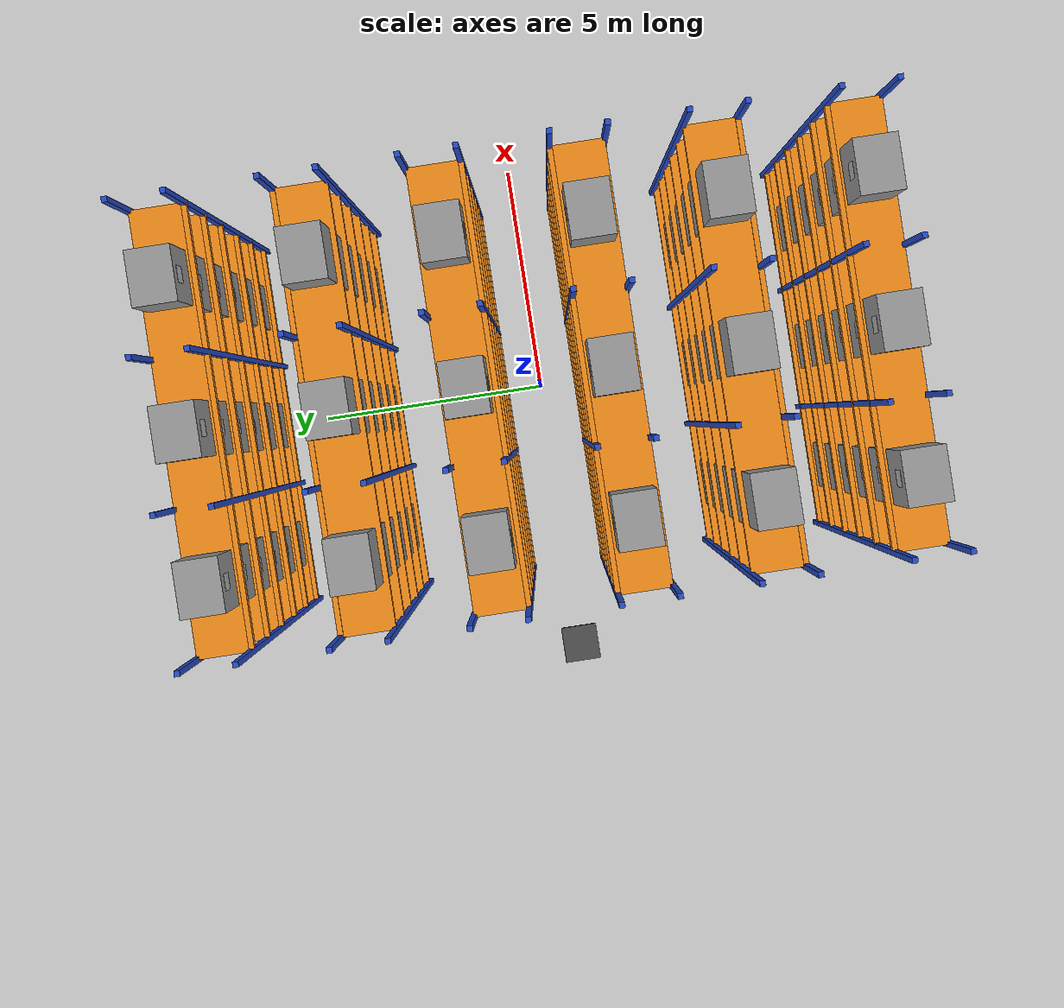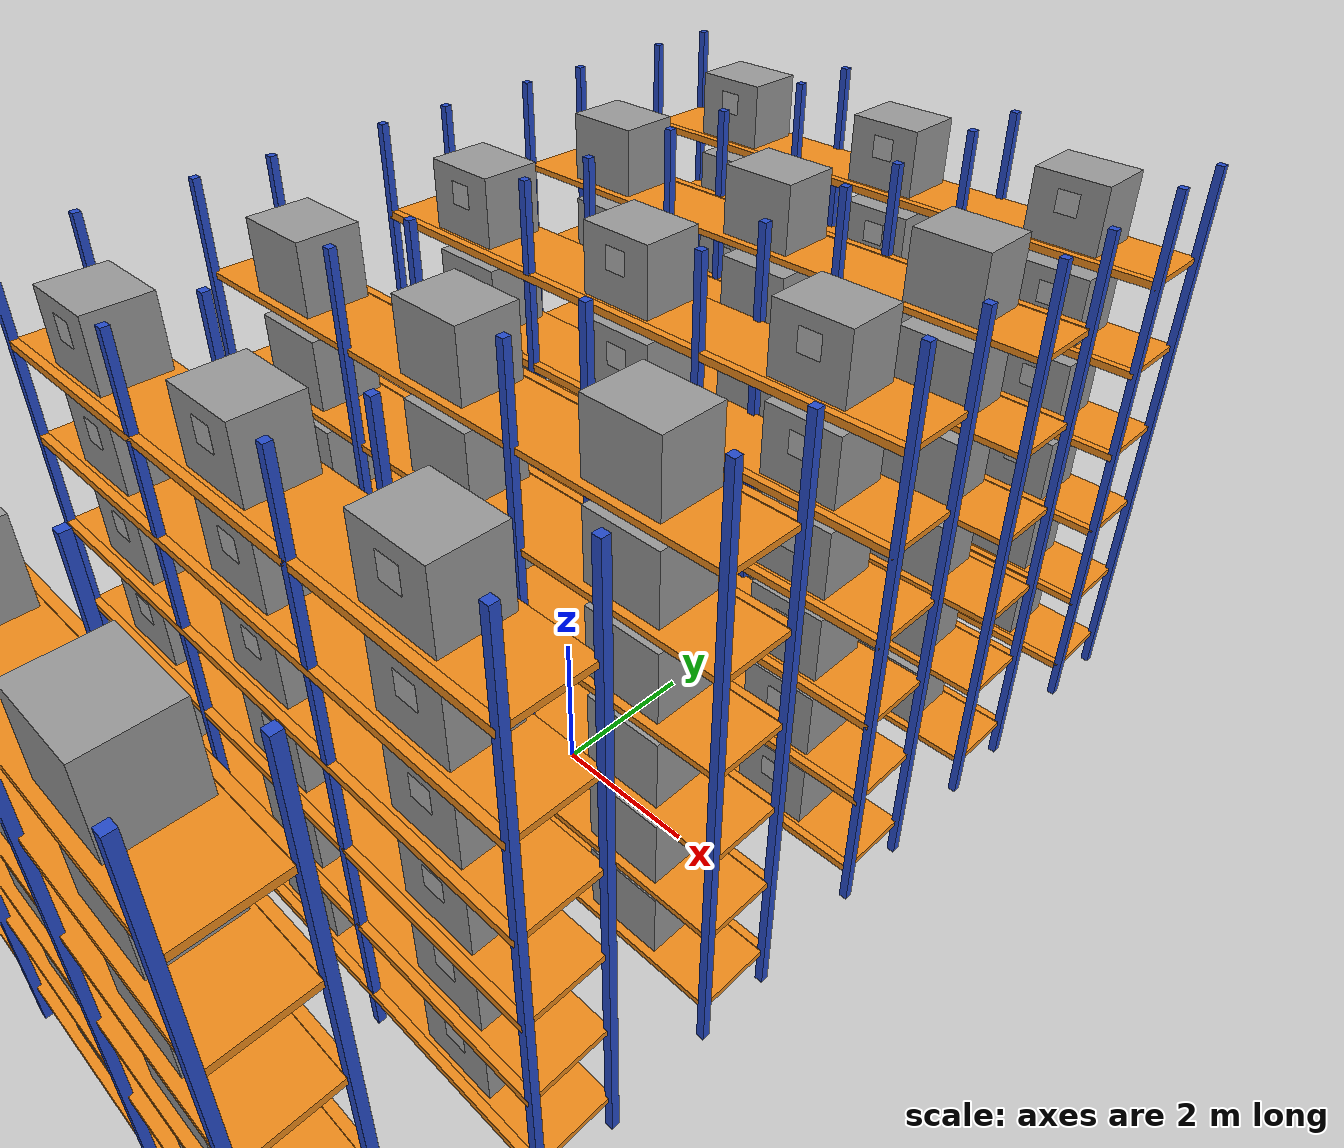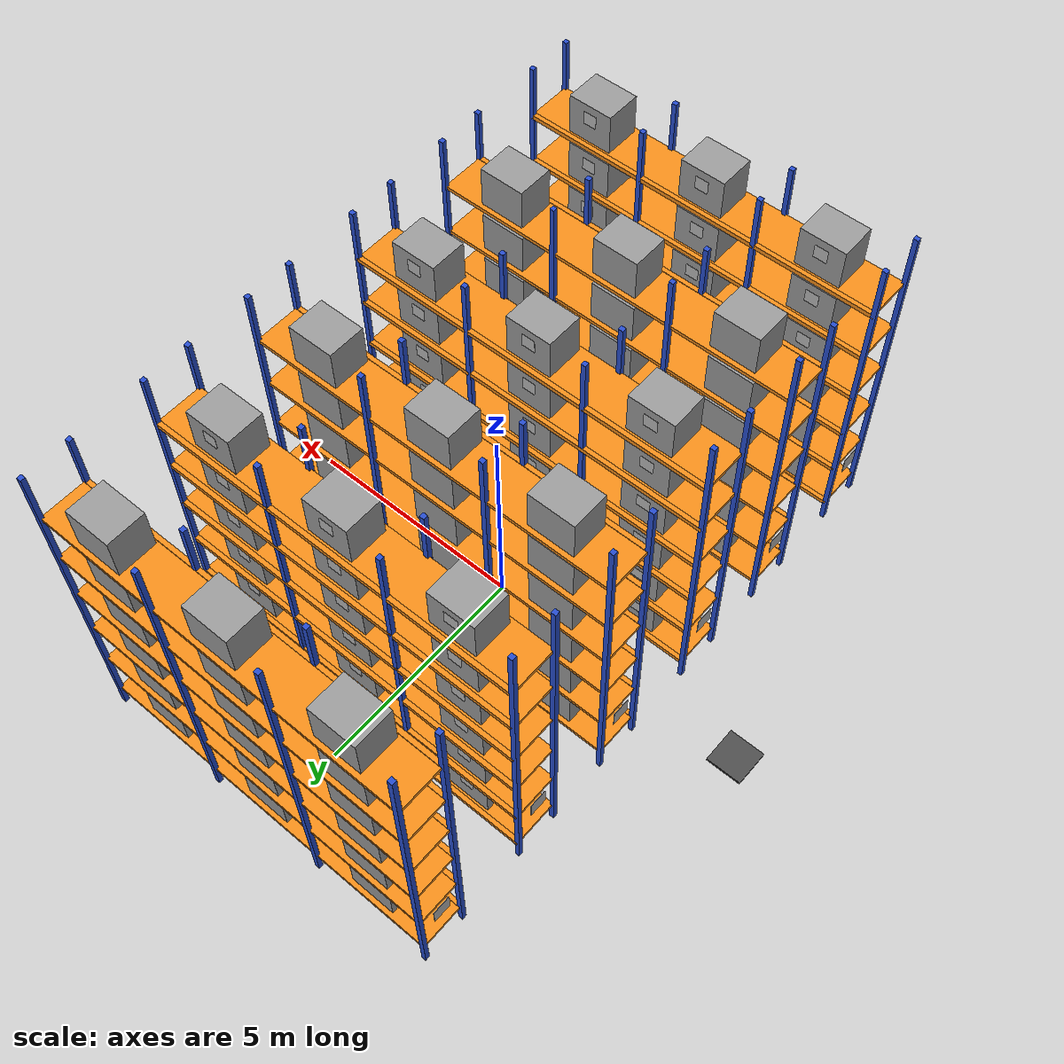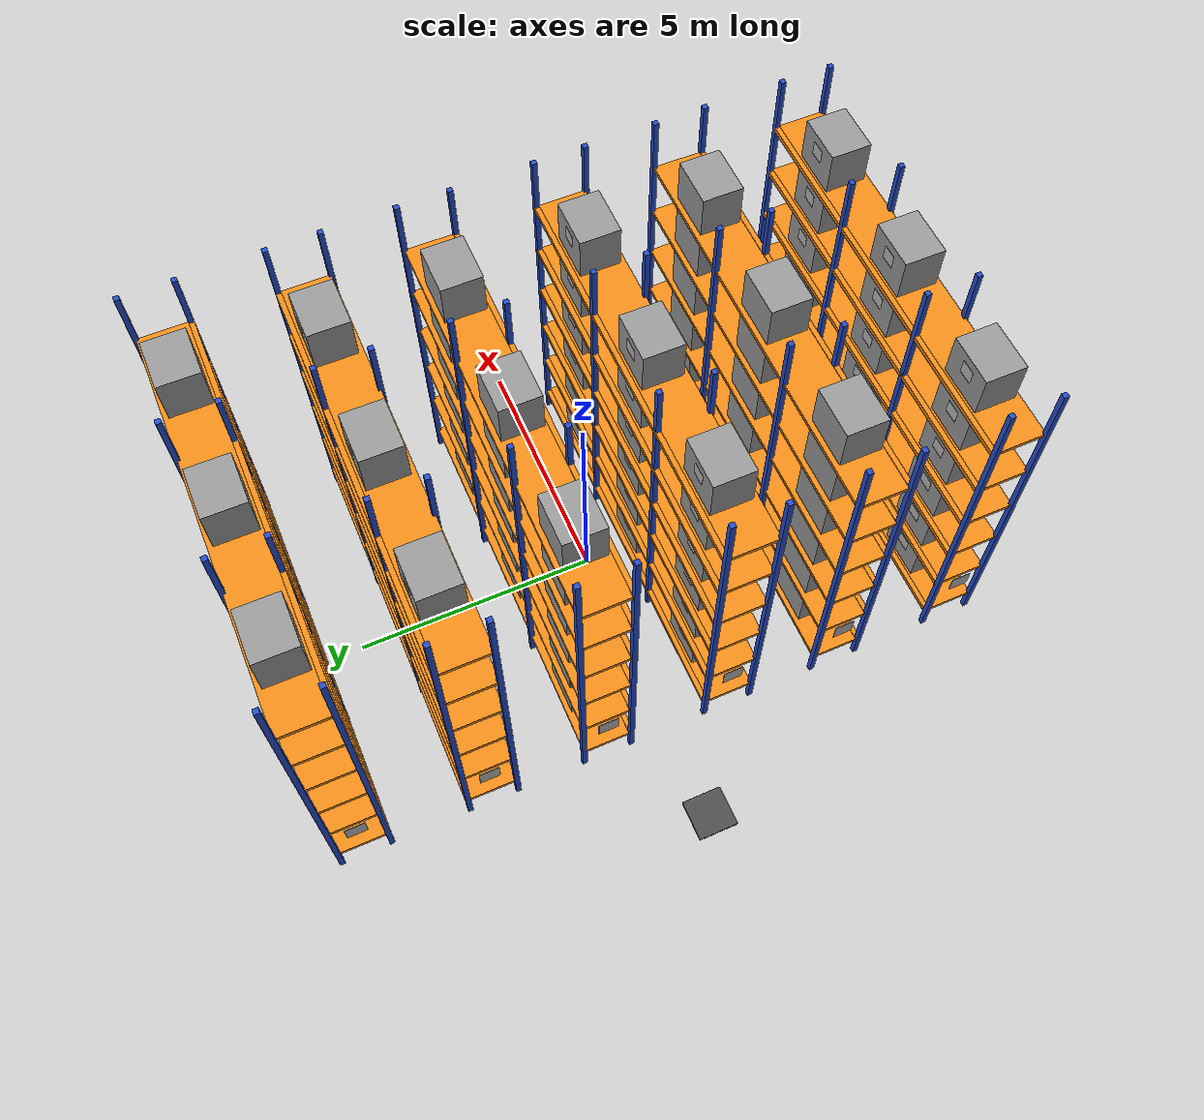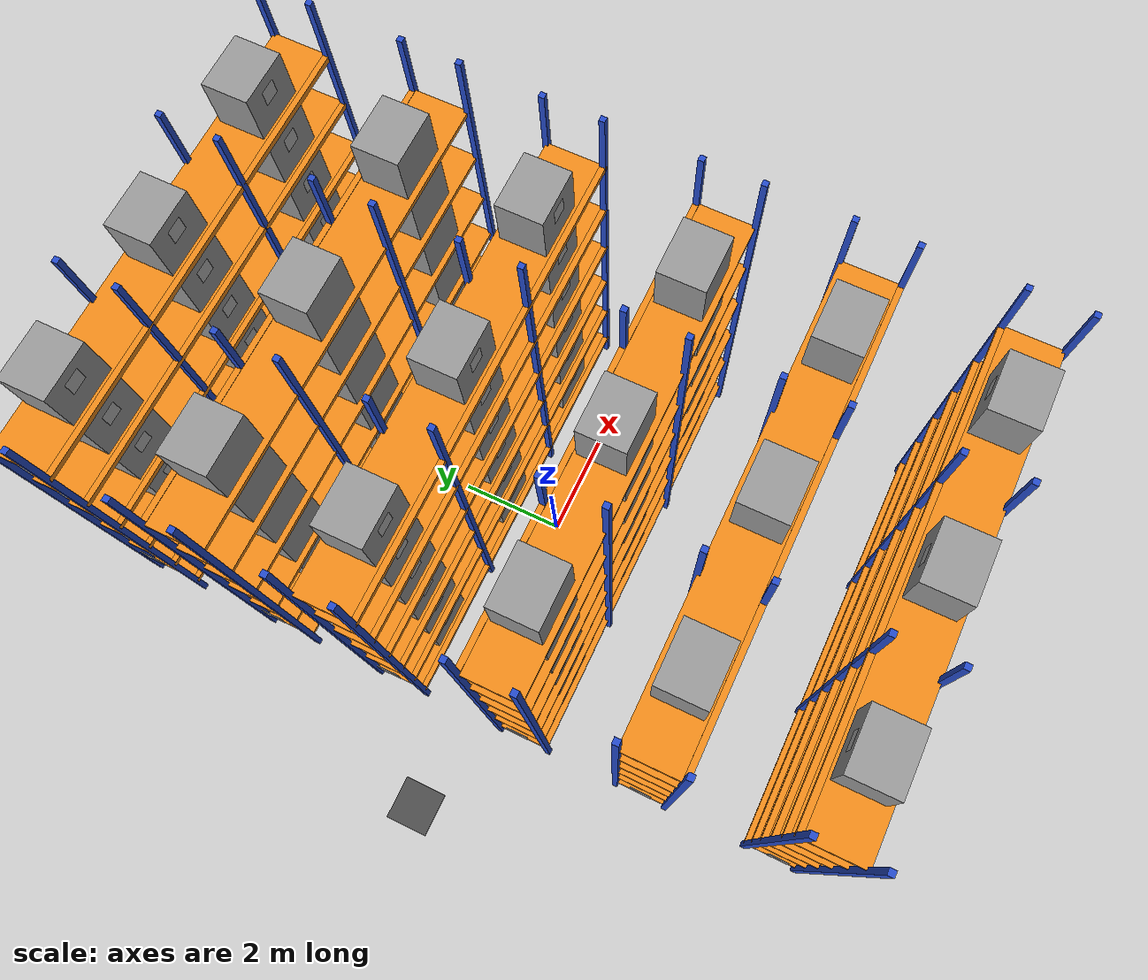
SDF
<sdf version="1.6">
 <world name="default">
  <plugin name="pairs_gazebo_static_transform_republisher_plugin" filename="libPairsGazeboCommonResources_StaticTransformRepublisher.so"/>
  <spherical_coordinates>
   <surface_model>EARTH_WGS84</surface_model>
   <latitude_deg>47.397743</latitude_deg>
   <longitude_deg>8.545594</longitude_deg>
   <elevation>0.0</elevation>
   <heading_deg>0</heading_deg>
  </spherical_coordinates>
  <physics name="default_physics" default="0" type="ode">
   <gravity>0 0 -9.8066</gravity>
   <ode>
    <solver>
     <type>quick</type>
     <iters>10</iters>
     <sor>1.3</sor>
     <use_dynamic_moi_rescaling>0</use_dynamic_moi_rescaling>
    </solver>
    <constraints>
     <cfm>0</cfm>
     <erp>0.2</erp>
     <contact_max_correcting_vel>1000</contact_max_correcting_vel>
     <contact_surface_layer>0.001</contact_surface_layer>
    </constraints>
   </ode>
   <max_step_size>0.004</max_step_size>
   <real_time_factor>1</real_time_factor>
   <real_time_update_rate>250</real_time_update_rate>
   <magnetic_field>6.0e-06 2.3e-05 -4.2e-05</magnetic_field>
  </physics>
  <scene><shadows>false</shadows><ambient>0.5 0.5 0.5 1</ambient><background>0.4 0.4 0.4 1</background></scene>
  <light name="sun" type="directional">
   <pose>0 0 1000 0.4 0.2 0</pose>
   <diffuse>0.9 0.9 0.9 1</diffuse>
   <specular>0.4 0.4 0.4 1</specular>
   <direction>0.1 0.1 -0.9</direction>
   <attenuation>
    <range>1000</range>
    <constant>0.9</constant>
    <linear>0.01</linear>
    <quadratic>0.001</quadratic>
   </attenuation>
   <cast_shadows>0</cast_shadows>
  </light>
  <model name="ground_plane">
   <static>true</static>
   <link name="link">
    <collision name="collision">
     <geometry><plane><normal>0 0 1</normal><size>250 250</size></plane></geometry>
     <surface><contact><ode><min_depth>0.01</min_depth><max_vel>0.0</max_vel></ode></contact></surface>
    </collision>
    <visual name="floor">
     <cast_shadows>false</cast_shadows>
     <geometry><plane><normal>0 0 1</normal><size>250 250</size></plane></geometry>
     <material>
      <script><uri>file://media/materials/scripts/gazebo.material</uri><name>Gazebo/Grey</name></script>
     </material>
    </visual>
   </link>
  </model>
  <include><name>rack_1_left</name><uri>model://warehouse_rack</uri><pose>0 6.3 0 0 0 0</pose></include>
  <include><name>rack_2_right</name><uri>model://warehouse_rack</uri><pose>0 3.7 0 0 0 3.14159</pose></include>
  <include><name>rack_3_left</name><uri>model://warehouse_rack</uri><pose>0 1.3 0 0 0 0</pose></include>
  <include><name>rack_4_right</name><uri>model://warehouse_rack</uri><pose>0 -1.3 0 0 0 3.14159</pose></include>
  <include><name>rack_5_left</name><uri>model://warehouse_rack</uri><pose>0 -3.7 0 0 0 0</pose></include>
  <include><name>rack_6_right</name><uri>model://warehouse_rack</uri><pose>0 -6.3 0 0 0 3.14159</pose></include>
  <model name="charging_dock">
   <static>1</static>
   <pose>-6 0 0 0 0 0</pose>
   <link name="pad">
    <collision name="pad_col">
     <pose>0 0 0.025 0 0 0</pose>
     <geometry><box><size>0.8 0.8 0.05</size></box></geometry>
    </collision>
    <visual name="pad_vis">
     <pose>0 0 0.025 0 0 0</pose>
     <geometry><box><size>0.8 0.8 0.05</size></box></geometry>
     <material>
      <script><uri>file://media/materials/scripts/gazebo.material</uri><name>Gazebo/DarkGrey</name></script>
     </material>
    </visual>
   </link>
  </model>
  <model name="the_void">
   <static>1</static>
   <link name="link">
    <pose>0 0 0.1 0 -0 0</pose>
    <visual name="the_void">
     <pose>0 0 2 0 -0 0</pose>
     <geometry><sphere><radius>0.25</radius></sphere></geometry>
     <material>
      <script><uri>file://media/materials/scripts/Gazebo.material</uri><name>Gazebo/Black</name></script>
     </material>
    </visual>
   </link>
   <pose>-1000 -1000 0 0 0 0</pose>
  </model>
  <plugin name="pairs_gazebo_rviz_cam_synchronizer" filename="libPairsGazeboCommonResources_RvizCameraSynchronizer.so">
   <target_frame_id>gazebo_user_camera</target_frame_id>
   <world_origin_frame_id>uav1/gps_origin</world_origin_frame_id>
   <frame_to_follow>uav1</frame_to_follow>
  </plugin>
  <model name="anchor_tag_101">
   <static>1</static>
   <pose>-4.1 6.3 1.5 0 0 3.14159</pose>
   <link name="link">
    <visual name="visual">
     <geometry><box><size>0.01 0.4 0.4</size></box></geometry>
     <material>
      <script>
       <uri>model://apriltag_marker/materials/scripts</uri>
       <uri>model://apriltag_marker/materials/textures</uri>
       <name>Apriltag_101</name>
      </script>
     </material>
    </visual>
   </link>
  </model>
  <model name="anchor_tag_102">
   <static>1</static>
   <pose>-4.1 3.7 1.5 0 0 3.14159</pose>
   <link name="link">
    <visual name="visual">
     <geometry><box><size>0.01 0.4 0.4</size></box></geometry>
     <material>
      <script>
       <uri>model://apriltag_marker/materials/scripts</uri>
       <uri>model://apriltag_marker/materials/textures</uri>
       <name>Apriltag_102</name>
      </script>
     </material>
    </visual>
   </link>
  </model>
  <model name="anchor_tag_103">
   <static>1</static>
   <pose>-4.1 1.3 1.5 0 0 3.14159</pose>
   <link name="link">
    <visual name="visual">
     <geometry><box><size>0.01 0.4 0.4</size></box></geometry>
     <material>
      <script>
       <uri>model://apriltag_marker/materials/scripts</uri>
       <uri>model://apriltag_marker/materials/textures</uri>
       <name>Apriltag_103</name>
      </script>
     </material>
    </visual>
   </link>
  </model>
  <model name="anchor_tag_104">
   <static>1</static>
   <pose>-4.1 -1.3 1.5 0 0 3.14159</pose>
   <link name="link">
    <visual name="visual">
     <geometry><box><size>0.01 0.4 0.4</size></box></geometry>
     <material>
      <script>
       <uri>model://apriltag_marker/materials/scripts</uri>
       <uri>model://apriltag_marker/materials/textures</uri>
       <name>Apriltag_104</name>
      </script>
     </material>
    </visual>
   </link>
  </model>
  <model name="anchor_tag_105">
   <static>1</static>
   <pose>-4.1 -3.7 1.5 0 0 3.14159</pose>
   <link name="link">
    <visual name="visual">
     <geometry><box><size>0.01 0.4 0.4</size></box></geometry>
     <material>
      <script>
       <uri>model://apriltag_marker/materials/scripts</uri>
       <uri>model://apriltag_marker/materials/textures</uri>
       <name>Apriltag_105</name>
      </script>
     </material>
    </visual>
   </link>
  </model>
  <model name="anchor_tag_106">
   <static>1</static>
   <pose>-4.1 -6.3 1.5 0 0 3.14159</pose>
   <link name="link">
    <visual name="visual">
     <geometry><box><size>0.01 0.4 0.4</size></box></geometry>
     <material>
      <script>
       <uri>model://apriltag_marker/materials/scripts</uri>
       <uri>model://apriltag_marker/materials/textures</uri>
       <name>Apriltag_106</name>
      </script>
     </material>
    </visual>
   </link>
  </model>
 </world>
</sdf>

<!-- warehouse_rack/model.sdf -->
<sdf version='1.6'>
  <model name='warehouse_rack'>
    <static>1</static>
    <link name='upright_0_f'>
      <pose>-4.0500 -0.5000 3.8500 0 0 0</pose>
      <collision name='upright_0_f_col'>
        <geometry><box><size>0.1000 0.1000 7.7000</size></box></geometry>
      </collision>
      <visual name='upright_0_f_vis'>
        <geometry><box><size>0.1000 0.1000 7.7000</size></box></geometry>
        <material><script>
          <uri>file://media/materials/scripts/gazebo.material</uri>
          <name>Gazebo/Blue</name>
        </script></material>
      </visual>
    </link>
    <link name='upright_0_b'>
      <pose>-4.0500 0.5000 3.8500 0 0 0</pose>
      <collision name='upright_0_b_col'>
        <geometry><box><size>0.1000 0.1000 7.7000</size></box></geometry>
      </collision>
      <visual name='upright_0_b_vis'>
        <geometry><box><size>0.1000 0.1000 7.7000</size></box></geometry>
        <material><script>
          <uri>file://media/materials/scripts/gazebo.material</uri>
          <name>Gazebo/Blue</name>
        </script></material>
      </visual>
    </link>
    <link name='upright_1_f'>
      <pose>-1.3500 -0.5000 3.8500 0 0 0</pose>
      <collision name='upright_1_f_col'>
        <geometry><box><size>0.1000 0.1000 7.7000</size></box></geometry>
      </collision>
      <visual name='upright_1_f_vis'>
        <geometry><box><size>0.1000 0.1000 7.7000</size></box></geometry>
        <material><script>
          <uri>file://media/materials/scripts/gazebo.material</uri>
          <name>Gazebo/Blue</name>
        </script></material>
      </visual>
    </link>
    <link name='upright_1_b'>
      <pose>-1.3500 0.5000 3.8500 0 0 0</pose>
      <collision name='upright_1_b_col'>
        <geometry><box><size>0.1000 0.1000 7.7000</size></box></geometry>
      </collision>
      <visual name='upright_1_b_vis'>
        <geometry><box><size>0.1000 0.1000 7.7000</size></box></geometry>
        <material><script>
          <uri>file://media/materials/scripts/gazebo.material</uri>
          <name>Gazebo/Blue</name>
        </script></material>
      </visual>
    </link>
    <link name='upright_2_f'>
      <pose>1.3500 -0.5000 3.8500 0 0 0</pose>
      <collision name='upright_2_f_col'>
        <geometry><box><size>0.1000 0.1000 7.7000</size></box></geometry>
      </collision>
      <visual name='upright_2_f_vis'>
        <geometry><box><size>0.1000 0.1000 7.7000</size></box></geometry>
        <material><script>
          <uri>file://media/materials/scripts/gazebo.material</uri>
          <name>Gazebo/Blue</name>
        </script></material>
      </visual>
    </link>
    <link name='upright_2_b'>
      <pose>1.3500 0.5000 3.8500 0 0 0</pose>
      <collision name='upright_2_b_col'>
        <geometry><box><size>0.1000 0.1000 7.7000</size></box></geometry>
      </collision>
      <visual name='upright_2_b_vis'>
        <geometry><box><size>0.1000 0.1000 7.7000</size></box></geometry>
        <material><script>
          <uri>file://media/materials/scripts/gazebo.material</uri>
          <name>Gazebo/Blue</name>
        </script></material>
      </visual>
    </link>
    <link name='upright_3_f'>
      <pose>4.0500 -0.5000 3.8500 0 0 0</pose>
      <collision name='upright_3_f_col'>
        <geometry><box><size>0.1000 0.1000 7.7000</size></box></geometry>
      </collision>
      <visual name='upright_3_f_vis'>
        <geometry><box><size>0.1000 0.1000 7.7000</size></box></geometry>
        <material><script>
          <uri>file://media/materials/scripts/gazebo.material</uri>
          <name>Gazebo/Blue</name>
        </script></material>
      </visual>
    </link>
    <link name='upright_3_b'>
      <pose>4.0500 0.5000 3.8500 0 0 0</pose>
      <collision name='upright_3_b_col'>
        <geometry><box><size>0.1000 0.1000 7.7000</size></box></geometry>
      </collision>
      <visual name='upright_3_b_vis'>
        <geometry><box><size>0.1000 0.1000 7.7000</size></box></geometry>
        <material><script>
          <uri>file://media/materials/scripts/gazebo.material</uri>
          <name>Gazebo/Blue</name>
        </script></material>
      </visual>
    </link>
    <link name='deck_0'>
      <pose>0.0000 0.0000 0.5000 0 0 0</pose>
      <collision name='deck_0_col'>
        <geometry><box><size>8.1000 1.0000 0.0800</size></box></geometry>
      </collision>
      <visual name='deck_0_vis'>
        <geometry><box><size>8.1000 1.0000 0.0800</size></box></geometry>
        <material><script>
          <uri>file://media/materials/scripts/gazebo.material</uri>
          <name>Gazebo/Orange</name>
        </script></material>
      </visual>
    </link>
    <link name='frontbeam_0'>
      <pose>0.0000 -0.5000 0.5000 0 0 0</pose>
      <collision name='frontbeam_0_col'>
        <geometry><box><size>8.1000 0.1000 0.1000</size></box></geometry>
      </collision>
      <visual name='frontbeam_0_vis'>
        <geometry><box><size>8.1000 0.1000 0.1000</size></box></geometry>
        <material><script>
          <uri>file://media/materials/scripts/gazebo.material</uri>
          <name>Gazebo/Orange</name>
        </script></material>
      </visual>
    </link>
    <link name='tag_beam_level_0_bay_0'>
      <pose>-2.7000 -0.4010 1.1000 0 0 0</pose>
      <visual name='tag_beam_level_0_bay_0_vis'>
        <geometry><box><size>0.30 0.001 0.30</size></box></geometry>
        <material>
          <script>
            <uri>model://apriltag_marker/materials/scripts</uri>
            <uri>model://apriltag_marker/materials/textures</uri>
            <name>Apriltag_marker</name>
          </script>
        </material>
      </visual>
    </link>
    <link name='tag_beam_level_0_bay_1'>
      <pose>0.0000 -0.4010 1.1000 0 0 0</pose>
      <visual name='tag_beam_level_0_bay_1_vis'>
        <geometry><box><size>0.30 0.001 0.30</size></box></geometry>
        <material>
          <script>
            <uri>model://apriltag_marker/materials/scripts</uri>
            <uri>model://apriltag_marker/materials/textures</uri>
            <name>Apriltag_marker</name>
          </script>
        </material>
      </visual>
    </link>
    <link name='tag_beam_level_0_bay_2'>
      <pose>2.7000 -0.4010 1.1000 0 0 0</pose>
      <visual name='tag_beam_level_0_bay_2_vis'>
        <geometry><box><size>0.30 0.001 0.30</size></box></geometry>
        <material>
          <script>
            <uri>model://apriltag_marker/materials/scripts</uri>
            <uri>model://apriltag_marker/materials/textures</uri>
            <name>Apriltag_marker</name>
          </script>
        </material>
      </visual>
    </link>
    <link name='deck_1'>
      <pose>0.0000 0.0000 1.7000 0 0 0</pose>
      <collision name='deck_1_col'>
        <geometry><box><size>8.1000 1.0000 0.0800</size></box></geometry>
      </collision>
      <visual name='deck_1_vis'>
        <geometry><box><size>8.1000 1.0000 0.0800</size></box></geometry>
        <material><script>
          <uri>file://media/materials/scripts/gazebo.material</uri>
          <name>Gazebo/Orange</name>
        </script></material>
      </visual>
    </link>
    <link name='frontbeam_1'>
      <pose>0.0000 -0.5000 1.7000 0 0 0</pose>
      <collision name='frontbeam_1_col'>
        <geometry><box><size>8.1000 0.1000 0.1000</size></box></geometry>
      </collision>
      <visual name='frontbeam_1_vis'>
        <geometry><box><size>8.1000 0.1000 0.1000</size></box></geometry>
        <material><script>
          <uri>file://media/materials/scripts/gazebo.material</uri>
          <name>Gazebo/Orange</name>
        </script></material>
      </visual>
    </link>
    <link name='tag_beam_level_1_bay_0'>
      <pose>-2.7000 -0.4010 2.3000 0 0 0</pose>
      <visual name='tag_beam_level_1_bay_0_vis'>
        <geometry><box><size>0.30 0.001 0.30</size></box></geometry>
        <material>
          <script>
            <uri>model://apriltag_marker/materials/scripts</uri>
            <uri>model://apriltag_marker/materials/textures</uri>
            <name>Apriltag_marker</name>
          </script>
        </material>
      </visual>
    </link>
    <link name='tag_beam_level_1_bay_1'>
      <pose>0.0000 -0.4010 2.3000 0 0 0</pose>
      <visual name='tag_beam_level_1_bay_1_vis'>
        <geometry><box><size>0.30 0.001 0.30</size></box></geometry>
        <material>
          <script>
            <uri>model://apriltag_marker/materials/scripts</uri>
            <uri>model://apriltag_marker/materials/textures</uri>
            <name>Apriltag_marker</name>
          </script>
        </material>
      </visual>
    </link>
    <link name='tag_beam_level_1_bay_2'>
      <pose>2.7000 -0.4010 2.3000 0 0 0</pose>
      <visual name='tag_beam_level_1_bay_2_vis'>
        <geometry><box><size>0.30 0.001 0.30</size></box></geometry>
        <material>
          <script>
            <uri>model://apriltag_marker/materials/scripts</uri>
            <uri>model://apriltag_marker/materials/textures</uri>
            <name>Apriltag_marker</name>
          </script>
        </material>
      </visual>
    </link>
    <link name='deck_2'>
      <pose>0.0000 0.0000 2.9000 0 0 0</pose>
      <collision name='deck_2_col'>
        <geometry><box><size>8.1000 1.0000 0.0800</size></box></geometry>
      </collision>
      <visual name='deck_2_vis'>
        <geometry><box><size>8.1000 1.0000 0.0800</size></box></geometry>
        <material><script>
          <uri>file://media/materials/scripts/gazebo.material</uri>
          <name>Gazebo/Orange</name>
        </script></material>
      </visual>
    </link>
    <link name='frontbeam_2'>
      <pose>0.0000 -0.5000 2.9000 0 0 0</pose>
      <collision name='frontbeam_2_col'>
        <geometry><box><size>8.1000 0.1000 0.1000</size></box></geometry>
      </collision>
      <visual name='frontbeam_2_vis'>
        <geometry><box><size>8.1000 0.1000 0.1000</size></box></geometry>
        <material><script>
          <uri>file://media/materials/scripts/gazebo.material</uri>
          <name>Gazebo/Orange</name>
        </script></material>
      </visual>
    </link>
    <link name='tag_beam_level_2_bay_0'>
      <pose>-2.7000 -0.4010 3.5000 0 0 0</pose>
      <visual name='tag_beam_level_2_bay_0_vis'>
        <geometry><box><size>0.30 0.001 0.30</size></box></geometry>
        <material>
          <script>
            <uri>model://apriltag_marker/materials/scripts</uri>
            <uri>model://apriltag_marker/materials/textures</uri>
            <name>Apriltag_marker</name>
          </script>
        </material>
      </visual>
    </link>
    <link name='tag_beam_level_2_bay_1'>
      <pose>0.0000 -0.4010 3.5000 0 0 0</pose>
      <visual name='tag_beam_level_2_bay_1_vis'>
        <geometry><box><size>0.30 0.001 0.30</size></box></geometry>
        <material>
          <script>
            <uri>model://apriltag_marker/materials/scripts</uri>
            <uri>model://apriltag_marker/materials/textures</uri>
            <name>Apriltag_marker</name>
          </script>
        </material>
      </visual>
    </link>
    <link name='tag_beam_level_2_bay_2'>
      <pose>2.7000 -0.4010 3.5000 0 0 0</pose>
      <visual name='tag_beam_level_2_bay_2_vis'>
        <geometry><box><size>0.30 0.001 0.30</size></box></geometry>
        <material>
          <script>
            <uri>model://apriltag_marker/materials/scripts</uri>
            <uri>model://apriltag_marker/materials/textures</uri>
            <name>Apriltag_marker</name>
          </script>
        </material>
      </visual>
    </link>
    <link name='deck_3'>
      <pose>0.0000 0.0000 4.1000 0 0 0</pose>
      <collision name='deck_3_col'>
        <geometry><box><size>8.1000 1.0000 0.0800</size></box></geometry>
      </collision>
      <visual name='deck_3_vis'>
        <geometry><box><size>8.1000 1.0000 0.0800</size></box></geometry>
        <material><script>
          <uri>file://media/materials/scripts/gazebo.material</uri>
          <name>Gazebo/Orange</name>
        </script></material>
      </visual>
    </link>
    <link name='frontbeam_3'>
      <pose>0.0000 -0.5000 4.1000 0 0 0</pose>
      <collision name='frontbeam_3_col'>
        <geometry><box><size>8.1000 0.1000 0.1000</size></box></geometry>
      </collision>
      <visual name='frontbeam_3_vis'>
        <geometry><box><size>8.1000 0.1000 0.1000</size></box></geometry>
        <material><script>
          <uri>file://media/materials/scripts/gazebo.material</uri>
          <name>Gazebo/Orange</name>
        </script></material>
      </visual>
    </link>
    <link name='tag_beam_level_3_bay_0'>
      <pose>-2.7000 -0.4010 4.7000 0 0 0</pose>
      <visual name='tag_beam_level_3_bay_0_vis'>
        <geometry><box><size>0.30 0.001 0.30</size></box></geometry>
        <material>
          <script>
            <uri>model://apriltag_marker/materials/scripts</uri>
            <uri>model://apriltag_marker/materials/textures</uri>
            <name>Apriltag_marker</name>
          </script>
        </material>
      </visual>
    </link>
    <link name='tag_beam_level_3_bay_1'>
      <pose>0.0000 -0.4010 4.7000 0 0 0</pose>
      <visual name='tag_beam_level_3_bay_1_vis'>
        <geometry><box><size>0.30 0.001 0.30</size></box></geometry>
        <material>
          <script>
            <uri>model://apriltag_marker/materials/scripts</uri>
            <uri>model://apriltag_marker/materials/textures</uri>
            <name>Apriltag_marker</name>
          </script>
        </material>
      </visual>
    </link>
    <link name='tag_beam_level_3_bay_2'>
      <pose>2.7000 -0.4010 4.7000 0 0 0</pose>
      <visual name='tag_beam_level_3_bay_2_vis'>
        <geometry><box><size>0.30 0.001 0.30</size></box></geometry>
        <material>
          <script>
            <uri>model://apriltag_marker/materials/scripts</uri>
            <uri>model://apriltag_marker/materials/textures</uri>
            <name>Apriltag_marker</name>
          </script>
        </material>
      </visual>
    </link>
    <link name='deck_4'>
      <pose>0.0000 0.0000 5.3000 0 0 0</pose>
      <collision name='deck_4_col'>
        <geometry><box><size>8.1000 1.0000 0.0800</size></box></geometry>
      </collision>
      <visual name='deck_4_vis'>
        <geometry><box><size>8.1000 1.0000 0.0800</size></box></geometry>
        <material><script>
          <uri>file://media/materials/scripts/gazebo.material</uri>
          <name>Gazebo/Orange</name>
        </script></material>
      </visual>
    </link>
    <link name='frontbeam_4'>
      <pose>0.0000 -0.5000 5.3000 0 0 0</pose>
      <collision name='frontbeam_4_col'>
        <geometry><box><size>8.1000 0.1000 0.1000</size></box></geometry>
      </collision>
      <visual name='frontbeam_4_vis'>
        <geometry><box><size>8.1000 0.1000 0.1000</size></box></geometry>
        <material><script>
          <uri>file://media/materials/scripts/gazebo.material</uri>
          <name>Gazebo/Orange</name>
        </script></material>
      </visual>
    </link>
    <link name='tag_beam_level_4_bay_0'>
      <pose>-2.7000 -0.4010 5.9000 0 0 0</pose>
      <visual name='tag_beam_level_4_bay_0_vis'>
        <geometry><box><size>0.30 0.001 0.30</size></box></geometry>
        <material>
          <script>
            <uri>model://apriltag_marker/materials/scripts</uri>
            <uri>model://apriltag_marker/materials/textures</uri>
            <name>Apriltag_marker</name>
          </script>
        </material>
      </visual>
    </link>
    <link name='tag_beam_level_4_bay_1'>
      <pose>0.0000 -0.4010 5.9000 0 0 0</pose>
      <visual name='tag_beam_level_4_bay_1_vis'>
        <geometry><box><size>0.30 0.001 0.30</size></box></geometry>
        <material>
          <script>
            <uri>model://apriltag_marker/materials/scripts</uri>
            <uri>model://apriltag_marker/materials/textures</uri>
            <name>Apriltag_marker</name>
          </script>
        </material>
      </visual>
    </link>
    <link name='tag_beam_level_4_bay_2'>
      <pose>2.7000 -0.4010 5.9000 0 0 0</pose>
      <visual name='tag_beam_level_4_bay_2_vis'>
        <geometry><box><size>0.30 0.001 0.30</size></box></geometry>
        <material>
          <script>
            <uri>model://apriltag_marker/materials/scripts</uri>
            <uri>model://apriltag_marker/materials/textures</uri>
            <name>Apriltag_marker</name>
          </script>
        </material>
      </visual>
    </link>
    <link name='deck_5'>
      <pose>0.0000 0.0000 6.5000 0 0 0</pose>
      <collision name='deck_5_col'>
        <geometry><box><size>8.1000 1.0000 0.0800</size></box></geometry>
      </collision>
      <visual name='deck_5_vis'>
        <geometry><box><size>8.1000 1.0000 0.0800</size></box></geometry>
        <material><script>
          <uri>file://media/materials/scripts/gazebo.material</uri>
          <name>Gazebo/Orange</name>
        </script></material>
      </visual>
    </link>
    <link name='frontbeam_5'>
      <pose>0.0000 -0.5000 6.5000 0 0 0</pose>
      <collision name='frontbeam_5_col'>
        <geometry><box><size>8.1000 0.1000 0.1000</size></box></geometry>
      </collision>
      <visual name='frontbeam_5_vis'>
        <geometry><box><size>8.1000 0.1000 0.1000</size></box></geometry>
        <material><script>
          <uri>file://media/materials/scripts/gazebo.material</uri>
          <name>Gazebo/Orange</name>
        </script></material>
      </visual>
    </link>
    <link name='tag_beam_level_5_bay_0'>
      <pose>-2.7000 -0.4010 7.1000 0 0 0</pose>
      <visual name='tag_beam_level_5_bay_0_vis'>
        <geometry><box><size>0.30 0.001 0.30</size></box></geometry>
        <material>
          <script>
            <uri>model://apriltag_marker/materials/scripts</uri>
            <uri>model://apriltag_marker/materials/textures</uri>
            <name>Apriltag_marker</name>
          </script>
        </material>
      </visual>
    </link>
    <link name='tag_beam_level_5_bay_1'>
      <pose>0.0000 -0.4010 7.1000 0 0 0</pose>
      <visual name='tag_beam_level_5_bay_1_vis'>
        <geometry><box><size>0.30 0.001 0.30</size></box></geometry>
        <material>
          <script>
            <uri>model://apriltag_marker/materials/scripts</uri>
            <uri>model://apriltag_marker/materials/textures</uri>
            <name>Apriltag_marker</name>
          </script>
        </material>
      </visual>
    </link>
    <link name='tag_beam_level_5_bay_2'>
      <pose>2.7000 -0.4010 7.1000 0 0 0</pose>
      <visual name='tag_beam_level_5_bay_2_vis'>
        <geometry><box><size>0.30 0.001 0.30</size></box></geometry>
        <material>
          <script>
            <uri>model://apriltag_marker/materials/scripts</uri>
            <uri>model://apriltag_marker/materials/textures</uri>
            <name>Apriltag_marker</name>
          </script>
        </material>
      </visual>
    </link>
    <link name='pallet_0_0'>
      <pose>-2.7000 0.0000 0.9900 0 0 0</pose>
      <collision name='pallet_0_0_col'>
        <geometry><box><size>1.0000 0.8000 0.9000</size></box></geometry>
      </collision>
      <visual name='pallet_0_0_vis'>
        <geometry><box><size>1.0000 0.8000 0.9000</size></box></geometry>
        <material><script>
          <uri>file://media/materials/scripts/gazebo.material</uri>
          <name>Gazebo/Grey</name>
        </script></material>
      </visual>
    </link>
    <link name='pallet_0_1'>
      <pose>0.0000 0.0000 0.9900 0 0 0</pose>
      <collision name='pallet_0_1_col'>
        <geometry><box><size>1.0000 0.8000 0.9000</size></box></geometry>
      </collision>
      <visual name='pallet_0_1_vis'>
        <geometry><box><size>1.0000 0.8000 0.9000</size></box></geometry>
        <material><script>
          <uri>file://media/materials/scripts/gazebo.material</uri>
          <name>Gazebo/Grey</name>
        </script></material>
      </visual>
    </link>
    <link name='pallet_0_2'>
      <pose>2.7000 0.0000 0.9900 0 0 0</pose>
      <collision name='pallet_0_2_col'>
        <geometry><box><size>1.0000 0.8000 0.9000</size></box></geometry>
      </collision>
      <visual name='pallet_0_2_vis'>
        <geometry><box><size>1.0000 0.8000 0.9000</size></box></geometry>
        <material><script>
          <uri>file://media/materials/scripts/gazebo.material</uri>
          <name>Gazebo/Grey</name>
        </script></material>
      </visual>
    </link>
    <link name='pallet_1_0'>
      <pose>-2.7000 0.0000 2.1900 0 0 0</pose>
      <collision name='pallet_1_0_col'>
        <geometry><box><size>1.0000 0.8000 0.9000</size></box></geometry>
      </collision>
      <visual name='pallet_1_0_vis'>
        <geometry><box><size>1.0000 0.8000 0.9000</size></box></geometry>
        <material><script>
          <uri>file://media/materials/scripts/gazebo.material</uri>
          <name>Gazebo/Grey</name>
        </script></material>
      </visual>
    </link>
    <link name='pallet_1_1'>
      <pose>0.0000 0.0000 2.1900 0 0 0</pose>
      <collision name='pallet_1_1_col'>
        <geometry><box><size>1.0000 0.8000 0.9000</size></box></geometry>
      </collision>
      <visual name='pallet_1_1_vis'>
        <geometry><box><size>1.0000 0.8000 0.9000</size></box></geometry>
        <material><script>
          <uri>file://media/materials/scripts/gazebo.material</uri>
          <name>Gazebo/Grey</name>
        </script></material>
      </visual>
    </link>
    <link name='pallet_1_2'>
      <pose>2.7000 0.0000 2.1900 0 0 0</pose>
      <collision name='pallet_1_2_col'>
        <geometry><box><size>1.0000 0.8000 0.9000</size></box></geometry>
      </collision>
      <visual name='pallet_1_2_vis'>
        <geometry><box><size>1.0000 0.8000 0.9000</size></box></geometry>
        <material><script>
          <uri>file://media/materials/scripts/gazebo.material</uri>
          <name>Gazebo/Grey</name>
        </script></material>
      </visual>
    </link>
    <link name='pallet_2_0'>
      <pose>-2.7000 0.0000 3.3900 0 0 0</pose>
      <collision name='pallet_2_0_col'>
        <geometry><box><size>1.0000 0.8000 0.9000</size></box></geometry>
      </collision>
      <visual name='pallet_2_0_vis'>
        <geometry><box><size>1.0000 0.8000 0.9000</size></box></geometry>
        <material><script>
          <uri>file://media/materials/scripts/gazebo.material</uri>
          <name>Gazebo/Grey</name>
        </script></material>
      </visual>
    </link>
    <link name='pallet_2_1'>
      <pose>0.0000 0.0000 3.3900 0 0 0</pose>
      <collision name='pallet_2_1_col'>
        <geometry><box><size>1.0000 0.8000 0.9000</size></box></geometry>
      </collision>
      <visual name='pallet_2_1_vis'>
        <geometry><box><size>1.0000 0.8000 0.9000</size></box></geometry>
        <material><script>
          <uri>file://media/materials/scripts/gazebo.material</uri>
          <name>Gazebo/Grey</name>
        </script></material>
      </visual>
    </link>
    <link name='pallet_2_2'>
      <pose>2.7000 0.0000 3.3900 0 0 0</pose>
      <collision name='pallet_2_2_col'>
        <geometry><box><size>1.0000 0.8000 0.9000</size></box></geometry>
      </collision>
      <visual name='pallet_2_2_vis'>
        <geometry><box><size>1.0000 0.8000 0.9000</size></box></geometry>
        <material><script>
          <uri>file://media/materials/scripts/gazebo.material</uri>
          <name>Gazebo/Grey</name>
        </script></material>
      </visual>
    </link>
    <link name='pallet_3_0'>
      <pose>-2.7000 0.0000 4.5900 0 0 0</pose>
      <collision name='pallet_3_0_col'>
        <geometry><box><size>1.0000 0.8000 0.9000</size></box></geometry>
      </collision>
      <visual name='pallet_3_0_vis'>
        <geometry><box><size>1.0000 0.8000 0.9000</size></box></geometry>
        <material><script>
          <uri>file://media/materials/scripts/gazebo.material</uri>
          <name>Gazebo/Grey</name>
        </script></material>
      </visual>
    </link>
    <link name='pallet_3_1'>
      <pose>0.0000 0.0000 4.5900 0 0 0</pose>
      <collision name='pallet_3_1_col'>
        <geometry><box><size>1.0000 0.8000 0.9000</size></box></geometry>
      </collision>
      <visual name='pallet_3_1_vis'>
        <geometry><box><size>1.0000 0.8000 0.9000</size></box></geometry>
        <material><script>
          <uri>file://media/materials/scripts/gazebo.material</uri>
          <name>Gazebo/Grey</name>
        </script></material>
      </visual>
    </link>
    <link name='pallet_3_2'>
      <pose>2.7000 0.0000 4.5900 0 0 0</pose>
      <collision name='pallet_3_2_col'>
        <geometry><box><size>1.0000 0.8000 0.9000</size></box></geometry>
      </collision>
      <visual name='pallet_3_2_vis'>
        <geometry><box><size>1.0000 0.8000 0.9000</size></box></geometry>
        <material><script>
          <uri>file://media/materials/scripts/gazebo.material</uri>
          <name>Gazebo/Grey</name>
        </script></material>
      </visual>
    </link>
    <link name='pallet_4_0'>
      <pose>-2.7000 0.0000 5.7900 0 0 0</pose>
      <collision name='pallet_4_0_col'>
        <geometry><box><size>1.0000 0.8000 0.9000</size></box></geometry>
      </collision>
      <visual name='pallet_4_0_vis'>
        <geometry><box><size>1.0000 0.8000 0.9000</size></box></geometry>
        <material><script>
          <uri>file://media/materials/scripts/gazebo.material</uri>
          <name>Gazebo/Grey</name>
        </script></material>
      </visual>
    </link>
    <link name='pallet_4_1'>
      <pose>0.0000 0.0000 5.7900 0 0 0</pose>
      <collision name='pallet_4_1_col'>
        <geometry><box><size>1.0000 0.8000 0.9000</size></box></geometry>
      </collision>
      <visual name='pallet_4_1_vis'>
        <geometry><box><size>1.0000 0.8000 0.9000</size></box></geometry>
        <material><script>
          <uri>file://media/materials/scripts/gazebo.material</uri>
          <name>Gazebo/Grey</name>
        </script></material>
      </visual>
    </link>
    <link name='pallet_4_2'>
      <pose>2.7000 0.0000 5.7900 0 0 0</pose>
      <collision name='pallet_4_2_col'>
        <geometry><box><size>1.0000 0.8000 0.9000</size></box></geometry>
      </collision>
      <visual name='pallet_4_2_vis'>
        <geometry><box><size>1.0000 0.8000 0.9000</size></box></geometry>
        <material><script>
          <uri>file://media/materials/scripts/gazebo.material</uri>
          <name>Gazebo/Grey</name>
        </script></material>
      </visual>
    </link>
    <link name='pallet_5_0'>
      <pose>-2.7000 0.0000 6.9900 0 0 0</pose>
      <collision name='pallet_5_0_col'>
        <geometry><box><size>1.0000 0.8000 0.9000</size></box></geometry>
      </collision>
      <visual name='pallet_5_0_vis'>
        <geometry><box><size>1.0000 0.8000 0.9000</size></box></geometry>
        <material><script>
          <uri>file://media/materials/scripts/gazebo.material</uri>
          <name>Gazebo/Grey</name>
        </script></material>
      </visual>
    </link>
    <link name='pallet_5_1'>
      <pose>0.0000 0.0000 6.9900 0 0 0</pose>
      <collision name='pallet_5_1_col'>
        <geometry><box><size>1.0000 0.8000 0.9000</size></box></geometry>
      </collision>
      <visual name='pallet_5_1_vis'>
        <geometry><box><size>1.0000 0.8000 0.9000</size></box></geometry>
        <material><script>
          <uri>file://media/materials/scripts/gazebo.material</uri>
          <name>Gazebo/Grey</name>
        </script></material>
      </visual>
    </link>
    <link name='pallet_5_2'>
      <pose>2.7000 0.0000 6.9900 0 0 0</pose>
      <collision name='pallet_5_2_col'>
        <geometry><box><size>1.0000 0.8000 0.9000</size></box></geometry>
      </collision>
      <visual name='pallet_5_2_vis'>
        <geometry><box><size>1.0000 0.8000 0.9000</size></box></geometry>
        <material><script>
          <uri>file://media/materials/scripts/gazebo.material</uri>
          <name>Gazebo/Grey</name>
        </script></material>
      </visual>
    </link>
  </model>
</sdf>
